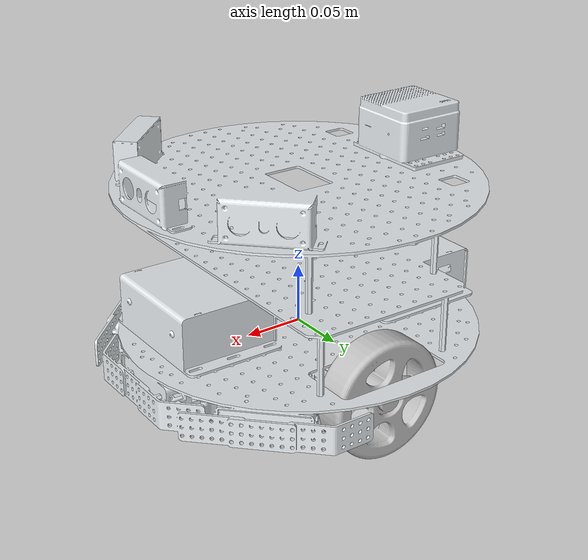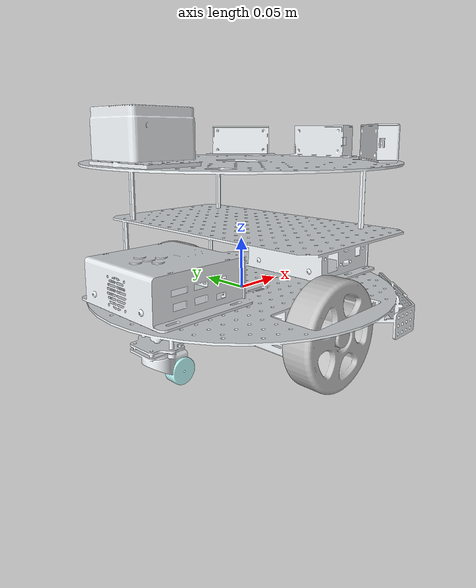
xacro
<?xml version="1.0"?>

<robot name="w2" xmlns:xacro="http://www.ros.org/wiki/xacro">

    <xacro:include filename="$(find upros_description)/xacro/w2_body.xacro" />
    <xacro:include filename="$(find upros_description)/xacro/imu.xacro" />
    <xacro:include filename="$(find upros_description)/xacro/diff_drive_controller.xacro" />

    <xacro:w2_body />
    <xacro:imu prefix="imu"/>
    <xacro:differential_drive_controller />

</robot>

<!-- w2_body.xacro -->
<robot xmlns:xacro="http://www.ros.org/wiki/xacro" name="w2_body">

    <xacro:macro name="w2_body">

        <link name="base_footprint">
        </link>

        <link name="base_link">
            <inertial>
                <origin xyz="-0.00183994912012901 0.000718384784481402 0.040896257051146"
                    rpy="0 0 0" />
                <mass value="2.11446326748896" />
                <inertia ixx="0.0172522550977486" ixy="0.000112962512291742"
                    ixz="0.00215471233797688"
                    iyy="0.0214703513066925" iyz="-3.60344762320202E-05" izz="0.0232865128652866" />
            </inertial>
            <visual>
                <origin xyz="0 0 0" rpy="0 0 0" />
                <geometry>
                    <mesh filename="package://upros_description/meshes/W2C/base_link.STL" />
                </geometry>
                <material name="">
                    <color rgba="0.898039215686275 0.917647058823529 0.929411764705882 1" />
                </material>
            </visual>
            <collision>
                <origin xyz="0 0 0" rpy="0 0 0" />
                <geometry>
                    <mesh filename="package://upros_description/meshes/W2C/base_link.STL" />
                </geometry>
            </collision>
        </link>
        <joint name="base_footprint_joint" type="fixed">
            <parent link="base_footprint" />
            <child link="base_link" />
        </joint>

        <link name="wheel_L_link">
            <inertial>
                <origin xyz="-3.78770996320736E-07 -0.013414250594195 4.81266645289274E-07"
                    rpy="0 0 0" />
                <mass value="0.337836569375269" />
                <inertia ixx="0.000278270805900081" ixy="1.29138084160578E-09"
                    ixz="1.09699819030228E-09" iyy="0.000496405737651082"
                    iyz="-1.64156177606385E-09"
                    izz="0.000278271727426874" />
            </inertial>
            <visual>
                <origin xyz="0 0 0" rpy="0 0 0" />
                <geometry>
                    <mesh filename="package://upros_description/meshes/W2C/wheel_L_link.STL" />
                </geometry>
                <material name="">
                    <color rgba="0.752941176470588 0.752941176470588 0.752941176470588 1" />
                </material>
            </visual>
            <collision>
                <origin xyz="0 0 0" rpy="0 0 0" />
                <geometry>
                    <mesh filename="package://upros_description/meshes/W2C/wheel_L_link.STL" />
                </geometry>
            </collision>
        </link>
        <joint name="wheel_L_joint" type="continuous">
            <origin xyz="0 0.1215 -0.02" rpy="0 0 0" />
            <parent link="base_link" />
            <child link="wheel_L_link" />
            <axis xyz="0 1 0" />
        </joint>

        <link name="wheel_R_link">
            <inertial>
                <origin xyz="-5.54575135339762E-07 0.013414250594195 2.59868179624395E-07"
                    rpy="0 0 0" />
                <mass value="0.337836569375269" />
                <inertia ixx="0.000278271195902002" ixy="-1.89148049635397E-09"
                    ixz="1.18772924132671E-09" iyy="0.000496405737651082" iyz="8.85827903470683E-10"
                    izz="0.000278271337424954" />
            </inertial>
            <visual>
                <origin xyz="0 0 0" rpy="0 0 0" />
                <geometry>
                    <mesh filename="package://upros_description/meshes/W2C/wheel_R_link.STL" />
                </geometry>
                <material name="">
                    <color rgba="0.752941176470588 0.752941176470588 0.752941176470588 1" />
                </material>
            </visual>
            <collision>
                <origin xyz="0 0 0" rpy="0 0 0" />
                <geometry>
                    <mesh filename="package://upros_description/meshes/W2C/wheel_R_link.STL" />
                </geometry>
            </collision>
        </link>
        <joint name="wheel_R_joint" type="continuous">
            <origin xyz="0 -0.1215 -0.02" rpy="0 0 0" />
            <parent link="base_link" />
            <child link="wheel_R_link" />
            <axis xyz="0 1 0" />
        </joint>

        <link name="front_Link">
            <inertial>
                <origin xyz="0 0 0" rpy="0 0 0" />
                <mass value="0.0063074121665526" />
                <inertia ixx="3.34755925557046E-07" ixy="-1.45392467961487E-22"
                    ixz="2.42001994301979E-24" iyy="4.93530086138426E-07" iyz="6.44209161389679E-25"
                    izz="3.34755925557046E-07" />
            </inertial>
            <visual>
                <origin xyz="0 0 0" rpy="0 0 0" />
                <geometry>
                    <mesh filename="package://upros_description/meshes/W2C/wheel_B_Link.STL" />
                </geometry>
                <material name="">
                    <color rgba="0.752941176470588 1 1 1" />
                </material>
            </visual>
            <collision>
                <origin xyz="0 0 0" rpy="0 0 0" />
                <geometry>
                    <mesh filename="package://upros_description/meshes/W2C/wheel_B_Link.STL" />
                </geometry>
            </collision>
        </link>
        <joint name="front_joint" type="continuous">
            <origin xyz="0.0859999999999999 0 -0.0575" rpy="0 0 0" />
            <parent link="base_link" />
            <child link="front_Link" />
            <axis xyz="1 1 1" />
        </joint>

        <link name="back_Link">
            <inertial>
                <origin xyz="0 0 0" rpy="0 0 0" />
                <mass value="0.0063074121665526" />
                <inertia ixx="3.34755925557046E-07" ixy="-1.45392467961487E-22"
                    ixz="2.42001994301979E-24" iyy="4.93530086138426E-07" iyz="6.4420916138968E-25"
                    izz="3.34755925557046E-07" />
            </inertial>
            <visual>
                <origin xyz="0 0 0" rpy="0 0 0" />
                <geometry>
                    <mesh filename="package://upros_description/meshes/W2C/wheel_A_Link.STL" />
                </geometry>
                <material name="">
                    <color rgba="0.752941176470588 1 1 1" />
                </material>
            </visual>
            <collision>
                <origin xyz="0 0 0" rpy="0 0 0" />
                <geometry>
                    <mesh filename="package://upros_description/meshes/W2C/wheel_A_Link.STL" />
                </geometry>
            </collision>
        </link>
        <joint name="back_joint" type="continuous">
            <origin xyz="-0.0859999999999998 0 -0.0575" rpy="0 0 0" />
            <parent link="base_link" />
            <child link="back_Link" />
            <axis xyz="1 1 1" />
        </joint>

    </xacro:macro>

</robot>

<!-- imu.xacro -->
<robot xmlns:xacro="http://www.ros.org/wiki/xacro" name="imu">

    <xacro:macro name="imu" params="prefix:=imu">

        <!-- IMU的link -->
        <link name="${prefix}_link">
            <visual>
                <origin xyz="0 0 0" rpy="0 0 0" />
                <geometry>
                    <!-- 这里假设IMU为一个简单的立方体 -->
                    <box size="0.001 0.001 0.001" />
                </geometry>
                <material name="gray">
                    <color rgba="0.5 0.5 0.5 1.0" />
                    <!-- 灰色 -->
                </material>
            </visual>
            <collision>
                <origin xyz="0 0 0" rpy="0 0 0" />
                <geometry>
                    <box size="0.001 0.001 0.001" />
                </geometry>
            </collision>
            <inertial>
                <mass value="0.01" />
                <!-- 假设质量为0.01kg -->
                <inertia ixx="0.001" ixy="0" ixz="0" iyy="0.001" iyz="0" izz="0.001" />
            </inertial>
        </link>

        <!-- IMU与父节点的连接joint，这里为固定连接 -->
        <joint name="${prefix}_joint" type="fixed">
            <parent link="base_link" />
            <child link="${prefix}_link" />
            <origin xyz="0 0 0.05" rpy="0 0 0" />
        </joint>

        <gazebo reference="${prefix}_link">
            <sensor type="imu" name="imu_sensor">
                <always_on>true</always_on>
                <update_rate>50.0</update_rate>
                <visualize>true</visualize>
                <plugin name="imu_plugin" filename="libgazebo_ros_imu_sensor.so">
                    <topicName>imu/data</topicName>
                    <frameName>imu_link</frameName>
                    <updateRateHZ>100.0</updateRateHZ>
                    <gaussianNoise>0.0</gaussianNoise>
                    <xyzOffset>0 0 0</xyzOffset>
                    <rpyOffset>0 0 0</rpyOffset>
                    <initialOrientationAsReference>false</initialOrientationAsReference>
                </plugin>
            </sensor>
        </gazebo>

    </xacro:macro>
</robot>
